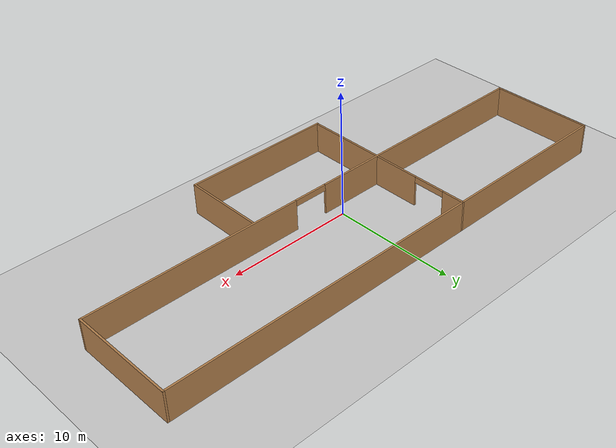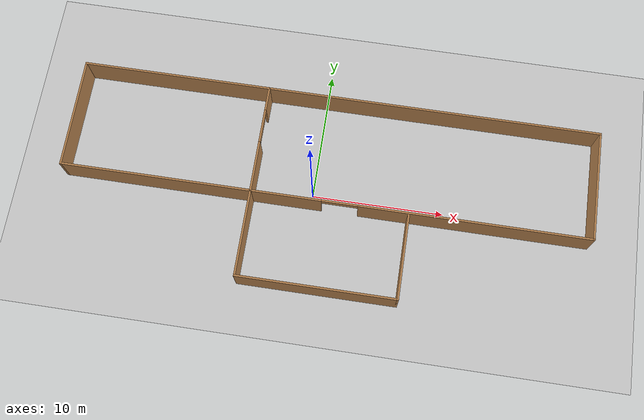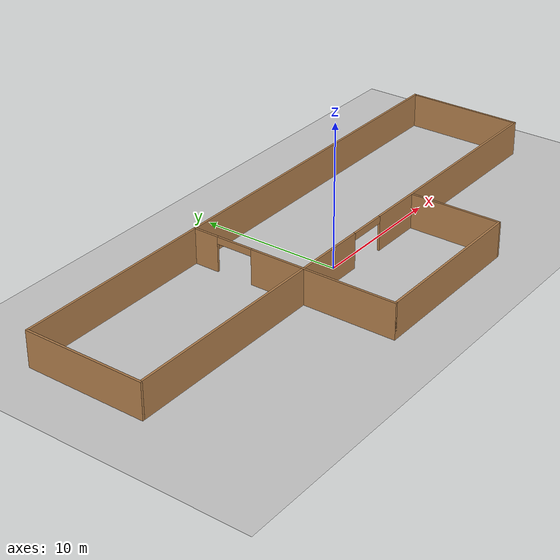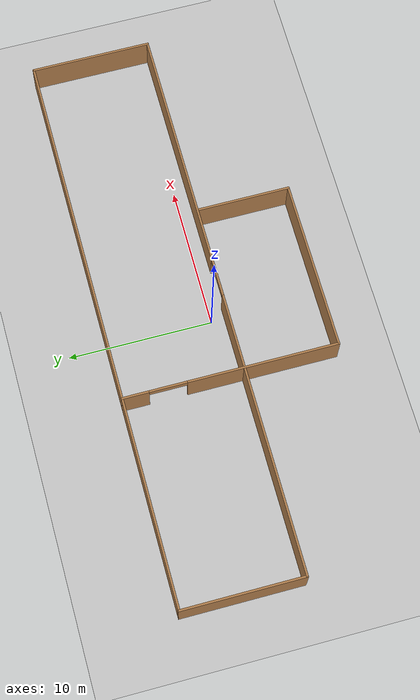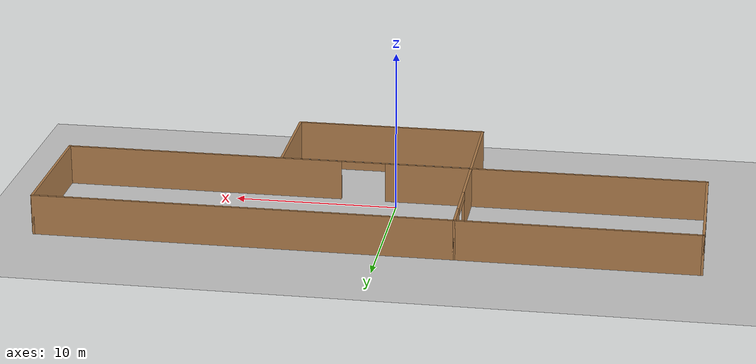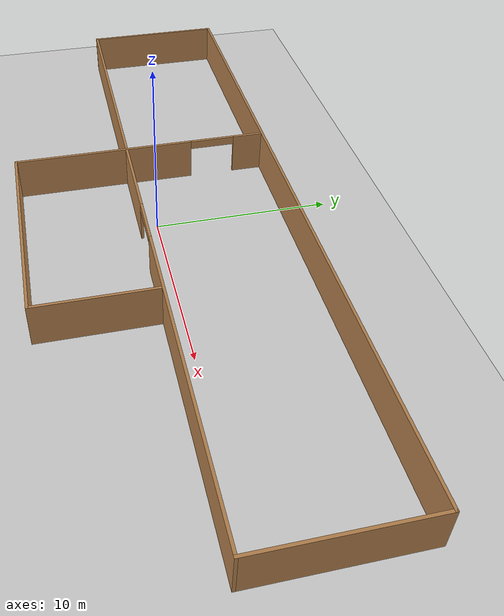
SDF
<sdf version="1.6">
 <world name="default">
  <light name="sun" type="directional">
   <pose>0 0 10 0 -0 0</pose>
   <diffuse>0.8 0.8 0.8 1</diffuse>
   <specular>0.2 0.2 0.2 1</specular>
   <attenuation>
    <range>1000</range>
    <constant>0.9</constant>
    <linear>0.01</linear>
    <quadratic>0.001</quadratic>
   </attenuation>
   <direction>-0.5 0.1 -0.9</direction>
  </light>
  <model name="ground_plane">
   <static>1</static>
   <link name="link">
    <collision name="collision">
     <geometry><plane><normal>0 0 1</normal><size>100 100</size></plane></geometry>
     <surface><friction><ode><mu>100</mu><mu2>50</mu2></ode></friction></surface>
    </collision>
    <visual name="visual">
     <cast_shadows>0</cast_shadows>
     <geometry><plane><normal>0 0 1</normal><size>100 100</size></plane></geometry>
     <material>
      <script><uri>file://media/materials/scripts/gazebo.material</uri><name>Gazebo/Grey</name></script>
     </material>
    </visual>
   </link>
  </model>
  <gravity>0 0 -9.8</gravity>
  <magnetic_field>6e-06 2.3e-05 -4.2e-05</magnetic_field>
  <atmosphere type="adiabatic"/>
  <physics name="default_physics" default="0" type="ode">
   <max_step_size>0.001</max_step_size>
   <real_time_factor>1</real_time_factor>
   <real_time_update_rate>1000</real_time_update_rate>
  </physics>
  <scene><ambient>0.4 0.4 0.4 1</ambient><background>0.7 0.7 0.7 1</background><shadows>1</shadows></scene>
  <spherical_coordinates>
   <surface_model>EARTH_WGS84</surface_model>
   <latitude_deg>0</latitude_deg>
   <longitude_deg>0</longitude_deg>
   <elevation>0</elevation>
   <heading_deg>0</heading_deg>
  </spherical_coordinates>
  <model name="small_office">
   <pose>0.995023 -0.052997 0 0 -0 0</pose>
   <link name="Wall_11">
    <collision name="Wall_11_Collision">
     <geometry><box><size>40 0.15 2.5</size></box></geometry>
     <pose>0 0 1.25 0 -0 0</pose>
    </collision>
    <visual name="Wall_11_Visual">
     <pose>0 0 1.25 0 -0 0</pose>
     <geometry><box><size>40 0.15 2.5</size></box></geometry>
     <material>
      <script><uri>file://media/materials/scripts/gazebo.material</uri><name>Gazebo/Wood</name></script>
      <ambient>1 1 1 1</ambient>
     </material>
     <meta><layer>0</layer></meta>
    </visual>
    <pose>-1e-06 7.425 0 0 -0 0</pose>
   </link>
   <link name="Wall_12">
    <collision name="Wall_12_Collision">
     <geometry><box><size>8.5 0.15 2.5</size></box></geometry>
     <pose>0 0 1.25 0 -0 0</pose>
    </collision>
    <visual name="Wall_12_Visual">
     <pose>0 0 1.25 0 -0 0</pose>
     <geometry><box><size>8.5 0.15 2.5</size></box></geometry>
     <material>
      <script><uri>file://media/materials/scripts/gazebo.material</uri><name>Gazebo/Wood</name></script>
      <ambient>1 1 1 1</ambient>
     </material>
     <meta><layer>0</layer></meta>
    </visual>
    <pose>19.925 3.25 0 0 0 -1.5708</pose>
   </link>
   <link name="Wall_13">
    <pose>-1e-06 -0.925 0 0 -0 3.14159</pose>
    <visual name="Wall_13_Visual_0">
     <pose>-11.2781 0 1.25 0 -0 0</pose>
     <geometry><box><size>17.4439 0.15 2.5</size></box></geometry>
     <material>
      <script><uri>file://media/materials/scripts/gazebo.material</uri><name>Gazebo/Wood</name></script>
      <ambient>1 1 1 1</ambient>
     </material>
     <meta><layer>0</layer></meta>
    </visual>
    <collision name="Wall_13_Collision_0">
     <geometry><box><size>17.4439 0.15 2.5</size></box></geometry>
     <pose>-11.2781 0 1.25 0 -0 0</pose>
    </collision>
    <visual name="Wall_13_Visual_1">
     <pose>10.0896 0 1.25 0 -0 0</pose>
     <geometry><box><size>19.8207 0.15 2.5</size></box></geometry>
     <material>
      <script><uri>file://media/materials/scripts/gazebo.material</uri><name>Gazebo/Wood</name></script>
      <ambient>1 1 1 1</ambient>
     </material>
     <meta><layer>0</layer></meta>
    </visual>
    <collision name="Wall_13_Collision_1">
     <geometry><box><size>19.8207 0.15 2.5</size></box></geometry>
     <pose>10.0896 0 1.25 0 -0 0</pose>
    </collision>
    <visual name="Wall_13_Visual_2">
     <pose>-1.18841 0 2.25 0 -0 0</pose>
     <geometry><box><size>2.73541 0.15 0.5</size></box></geometry>
     <material>
      <script><uri>file://media/materials/scripts/gazebo.material</uri><name>Gazebo/Wood</name></script>
      <ambient>1 1 1 1</ambient>
     </material>
     <meta><layer>0</layer></meta>
    </visual>
    <collision name="Wall_13_Collision_2">
     <geometry><box><size>2.73541 0.15 0.5</size></box></geometry>
     <pose>-1.18841 0 2.25 0 -0 0</pose>
    </collision>
   </link>
   <link name="Wall_14">
    <collision name="Wall_14_Collision">
     <geometry><box><size>8.5 0.15 2.5</size></box></geometry>
     <pose>0 0 1.25 0 -0 0</pose>
    </collision>
    <visual name="Wall_14_Visual">
     <pose>0 0 1.25 0 -0 0</pose>
     <geometry><box><size>8.5 0.15 2.5</size></box></geometry>
     <material>
      <script><uri>file://media/materials/scripts/gazebo.material</uri><name>Gazebo/Wood</name></script>
      <ambient>1 1 1 1</ambient>
     </material>
     <meta><layer>0</layer></meta>
    </visual>
    <pose>-19.925 3.25 0 0 -0 1.5708</pose>
   </link>
   <link name="Wall_16">
    <pose>-5.50259 0 0 0 0 -1.5708</pose>
    <visual name="Wall_16_Visual_0">
     <pose>-6.55008 0 1.25 0 -0 0</pose>
     <geometry><box><size>1.89984 0.15 2.5</size></box></geometry>
     <material>
      <script><uri>file://media/materials/scripts/gazebo.material</uri><name>Gazebo/Wood</name></script>
      <ambient>1 1 1 1</ambient>
     </material>
     <meta><layer>0</layer></meta>
    </visual>
    <collision name="Wall_16_Collision_0">
     <geometry><box><size>1.89984 0.15 2.5</size></box></geometry>
     <pose>-6.55008 0 1.25 0 -0 0</pose>
    </collision>
    <visual name="Wall_16_Visual_1">
     <pose>2.25645 0 1.25 0 -0 0</pose>
     <geometry><box><size>10.4871 0.15 2.5</size></box></geometry>
     <material>
      <script><uri>file://media/materials/scripts/gazebo.material</uri><name>Gazebo/Wood</name></script>
      <ambient>1 1 1 1</ambient>
     </material>
     <meta><layer>0</layer></meta>
    </visual>
    <collision name="Wall_16_Collision_1">
     <geometry><box><size>10.4871 0.15 2.5</size></box></geometry>
     <pose>2.25645 0 1.25 0 -0 0</pose>
    </collision>
    <visual name="Wall_16_Visual_2">
     <pose>-4.29363 0 2.25 0 -0 0</pose>
     <geometry><box><size>2.61305 0.15 0.5</size></box></geometry>
     <material>
      <script><uri>file://media/materials/scripts/gazebo.material</uri><name>Gazebo/Wood</name></script>
      <ambient>1 1 1 1</ambient>
     </material>
     <meta><layer>0</layer></meta>
    </visual>
    <collision name="Wall_16_Collision_2">
     <geometry><box><size>2.61305 0.15 0.5</size></box></geometry>
     <pose>-4.29363 0 2.25 0 -0 0</pose>
    </collision>
   </link>
   <link name="Wall_17">
    <collision name="Wall_17_Collision">
     <geometry><box><size>12 0.15 2.5</size></box></geometry>
     <pose>0 0 1.25 0 -0 0</pose>
    </collision>
    <visual name="Wall_17_Visual">
     <pose>0 0 1.25 0 -0 0</pose>
     <geometry><box><size>12 0.15 2.5</size></box></geometry>
     <material>
      <script><uri>file://media/materials/scripts/gazebo.material</uri><name>Gazebo/Wood</name></script>
      <ambient>1 1 1 1</ambient>
     </material>
     <meta><layer>0</layer></meta>
    </visual>
    <pose>0.422413 -7.425 0 0 -0 0</pose>
   </link>
   <link name="Wall_18">
    <collision name="Wall_18_Collision">
     <geometry><box><size>6.5 0.15 2.5</size></box></geometry>
     <pose>0 0 1.25 0 -0 0</pose>
    </collision>
    <visual name="Wall_18_Visual">
     <pose>0 0 1.25 0 -0 0</pose>
     <geometry><box><size>6.5 0.15 2.5</size></box></geometry>
     <material>
      <script><uri>file://media/materials/scripts/gazebo.material</uri><name>Gazebo/Wood</name></script>
      <ambient>1 1 1 1</ambient>
     </material>
     <meta><layer>0</layer></meta>
    </visual>
    <pose>6.34741 -4.25 0 0 -0 1.5708</pose>
   </link>
   <static>1</static>
  </model>
  <plugin name="gazebo_connection_plugin" filename="libgazebo_connection_plugin.so"/>
 </world>
</sdf>
